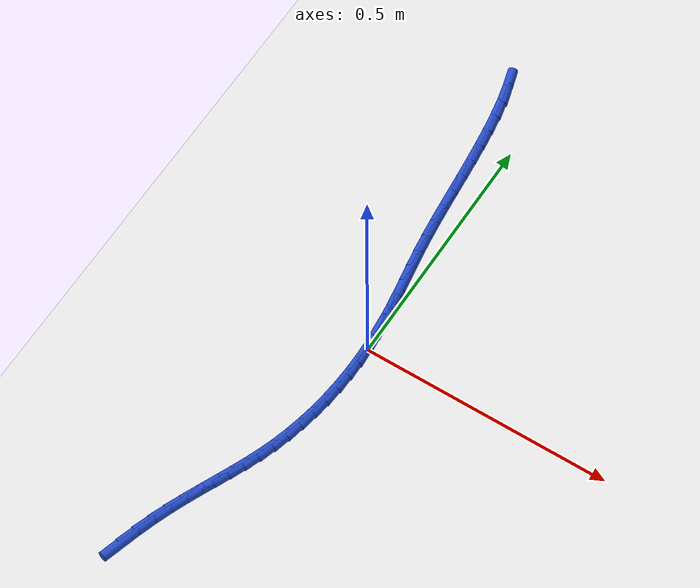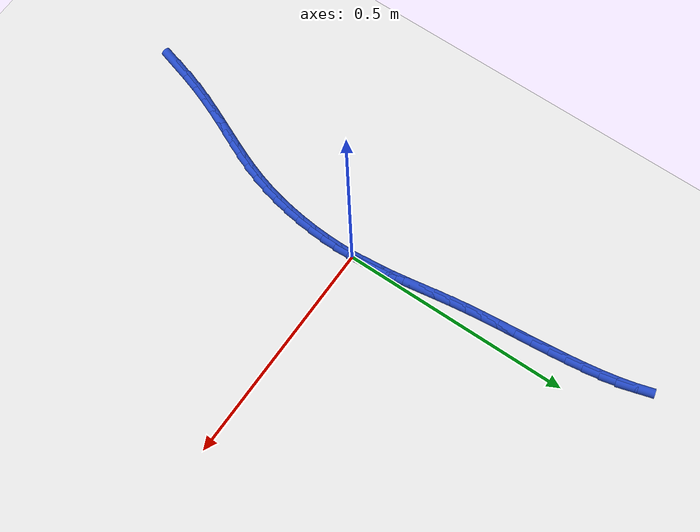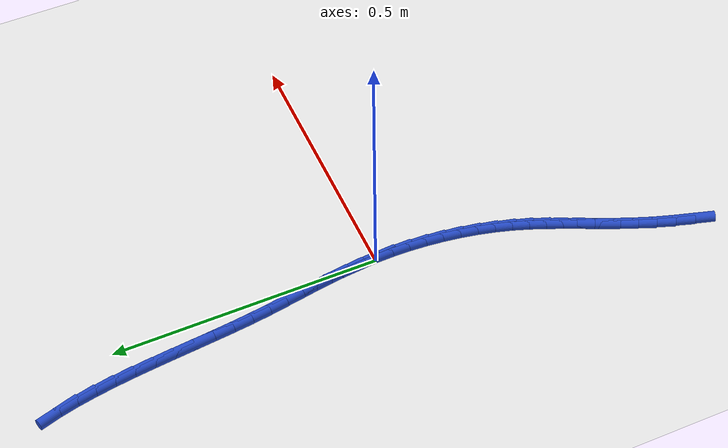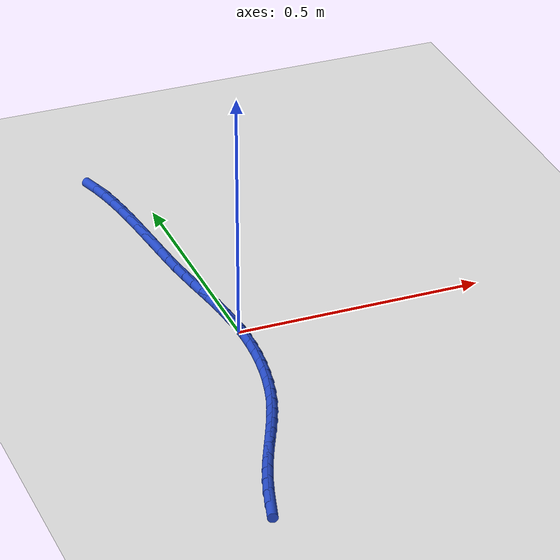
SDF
<sdf version="1.6">
 <world name="default">
  <model name="ground_plane">
   <static>1</static>
   <link name="link">
    <collision name="collision">
     <geometry><plane><normal>0 0 1</normal><size>100 100</size></plane></geometry>
     <surface><friction><ode><mu>100</mu><mu2>50</mu2></ode></friction></surface>
    </collision>
    <visual name="visual">
     <cast_shadows>0</cast_shadows>
     <geometry><plane><normal>0 0 1</normal><size>100 100</size></plane></geometry>
     <material>
      <script><uri>file://media/materials/scripts/gazebo.material</uri><name>Gazebo/WhiteGlow</name></script>
     </material>
    </visual>
   </link>
  </model>
  <model name="line">
   <link name="link_0">
    <pose>5.204170427930421e-18 0.0 0.01 0 1.57 -1.5065319160042556</pose>
    <collision name="collision">
     <geometry><cylinder><radius>0.01</radius><length>0.08</length></cylinder></geometry>
    </collision>
    <visual name="visual">
     <material>
      <script><name>Gazebo/Blue</name><uri>file://media/materials/scripts/gazebo.material</uri></script>
     </material>
     <geometry><cylinder><radius>0.01</radius><length>0.08</length></cylinder></geometry>
    </visual>
   </link>
   <link name="link_1">
    <pose>-0.00204267366617054 0.031741687880043064 0.01 0 1.57 -1.4699507299500543</pose>
    <collision name="collision">
     <geometry><cylinder><radius>0.01</radius><length>0.08</length></cylinder></geometry>
    </collision>
    <visual name="visual">
     <material>
      <script><name>Gazebo/Blue</name><uri>file://media/materials/scripts/gazebo.material</uri></script>
     </material>
     <geometry><cylinder><radius>0.01</radius><length>0.08</length></cylinder></geometry>
    </visual>
   </link>
   <link name="link_2">
    <pose>-0.005219300440539194 0.06313473800753344 0.01 0 1.57 -1.44181646894058</pose>
    <collision name="collision">
     <geometry><cylinder><radius>0.01</radius><length>0.08</length></cylinder></geometry>
    </collision>
    <visual name="visual">
     <material>
      <script><name>Gazebo/Blue</name><uri>file://media/materials/scripts/gazebo.material</uri></script>
     </material>
     <geometry><cylinder><radius>0.01</radius><length>0.08</length></cylinder></geometry>
    </visual>
   </link>
   <link name="link_3">
    <pose>-0.009276293561994 0.09441459119313915 0.01 0 1.57 -1.422733107835847</pose>
    <collision name="collision">
     <geometry><cylinder><radius>0.01</radius><length>0.08</length></cylinder></geometry>
    </collision>
    <visual name="visual">
     <material>
      <script><name>Gazebo/Blue</name><uri>file://media/materials/scripts/gazebo.material</uri></script>
     </material>
     <geometry><cylinder><radius>0.01</radius><length>0.08</length></cylinder></geometry>
    </visual>
   </link>
   <link name="link_4">
    <pose>-0.013960066269423 0.12581668824752817 0.01 0 1.57 -1.4128963723806673</pose>
    <collision name="collision">
     <geometry><cylinder><radius>0.01</radius><length>0.08</length></cylinder></geometry>
    </collision>
    <visual name="visual">
     <material>
      <script><name>Gazebo/Blue</name><uri>file://media/materials/scripts/gazebo.material</uri></script>
     </material>
     <geometry><cylinder><radius>0.01</radius><length>0.08</length></cylinder></geometry>
    </visual>
   </link>
   <link name="link_5">
    <pose>-0.01901703180171423 0.15757646998136846 0.01 0 1.57 -1.4121378567576481</pose>
    <collision name="collision">
     <geometry><cylinder><radius>0.01</radius><length>0.08</length></cylinder></geometry>
    </collision>
    <visual name="visual">
     <material>
      <script><name>Gazebo/Blue</name><uri>file://media/materials/scripts/gazebo.material</uri></script>
     </material>
     <geometry><cylinder><radius>0.01</radius><length>0.08</length></cylinder></geometry>
    </visual>
   </link>
   <link name="link_6">
    <pose>-0.024193603397755753 0.1899293772053281 0.01 0 1.57 -1.4199802181084986</pose>
    <collision name="collision">
     <geometry><cylinder><radius>0.01</radius><length>0.08</length></cylinder></geometry>
    </collision>
    <visual name="visual">
     <material>
      <script><name>Gazebo/Blue</name><uri>file://media/materials/scripts/gazebo.material</uri></script>
     </material>
     <geometry><cylinder><radius>0.01</radius><length>0.08</length></cylinder></geometry>
    </visual>
   </link>
   <link name="link_7">
    <pose>-0.029236194296435595 0.22311085073007497 0.01 0 1.57 -1.435693346711526</pose>
    <collision name="collision">
     <geometry><cylinder><radius>0.01</radius><length>0.08</length></cylinder></geometry>
    </collision>
    <visual name="visual">
     <material>
      <script><name>Gazebo/Blue</name><uri>file://media/materials/scripts/gazebo.material</uri></script>
     </material>
     <geometry><cylinder><radius>0.01</radius><length>0.08</length></cylinder></geometry>
    </visual>
   </link>
   <link name="link_8">
    <pose>-0.0338912177366418 0.2573563313662772 0.01 0 1.57 -1.4561835001598433</pose>
    <collision name="collision">
     <geometry><cylinder><radius>0.01</radius><length>0.08</length></cylinder></geometry>
    </collision>
    <visual name="visual">
     <material>
      <script><name>Gazebo/Blue</name><uri>file://media/materials/scripts/gazebo.material</uri></script>
     </material>
     <geometry><cylinder><radius>0.01</radius><length>0.08</length></cylinder></geometry>
    </visual>
   </link>
   <link name="link_9">
    <pose>-0.03797395466479403 0.292822206277312 0.01 0 1.57 -1.4714053504873996</pose>
    <collision name="collision">
     <geometry><cylinder><radius>0.01</radius><length>0.08</length></cylinder></geometry>
    </collision>
    <visual name="visual">
     <material>
      <script><name>Gazebo/Blue</name><uri>file://media/materials/scripts/gazebo.material</uri></script>
     </material>
     <geometry><cylinder><radius>0.01</radius><length>0.08</length></cylinder></geometry>
    </visual>
   </link>
   <link name="link_10">
    <pose>-0.04161212363871337 0.32930621365133556 0.01 0 1.57 -1.4793840261193771</pose>
    <collision name="collision">
     <geometry><cylinder><radius>0.01</radius><length>0.08</length></cylinder></geometry>
    </collision>
    <visual name="visual">
     <material>
      <script><name>Gazebo/Blue</name><uri>file://media/materials/scripts/gazebo.material</uri></script>
     </material>
     <geometry><cylinder><radius>0.01</radius><length>0.08</length></cylinder></geometry>
    </visual>
   </link>
   <link name="link_11">
    <pose>-0.04502200179164849 0.36650443476592304 0.01 0 1.57 -1.4806925210956428</pose>
    <collision name="collision">
     <geometry><cylinder><radius>0.01</radius><length>0.08</length></cylinder></geometry>
    </collision>
    <visual name="visual">
     <material>
      <script><name>Gazebo/Blue</name><uri>file://media/materials/scripts/gazebo.material</uri></script>
     </material>
     <geometry><cylinder><radius>0.01</radius><length>0.08</length></cylinder></geometry>
    </visual>
   </link>
   <link name="link_12">
    <pose>-0.048419872030523205 0.4041129442710151 0.01 0 1.57 -1.4755752256892347</pose>
    <collision name="collision">
     <geometry><cylinder><radius>0.01</radius><length>0.08</length></cylinder></geometry>
    </collision>
    <visual name="visual">
     <material>
      <script><name>Gazebo/Blue</name><uri>file://media/materials/scripts/gazebo.material</uri></script>
     </material>
     <geometry><cylinder><radius>0.01</radius><length>0.08</length></cylinder></geometry>
    </visual>
   </link>
   <link name="link_13">
    <pose>-0.05202201726226119 0.44182781681655114 0.01 0 1.57 -1.4639818279687642</pose>
    <collision name="collision">
     <geometry><cylinder><radius>0.01</radius><length>0.08</length></cylinder></geometry>
    </collision>
    <visual name="visual">
     <material>
      <script><name>Gazebo/Blue</name><uri>file://media/materials/scripts/gazebo.material</uri></script>
     </material>
     <geometry><cylinder><radius>0.01</radius><length>0.08</length></cylinder></geometry>
    </visual>
   </link>
   <link name="link_14">
    <pose>-0.056044720393786183 0.4793451270524713 0.01 0 1.57 -1.445575172398241</pose>
    <collision name="collision">
     <geometry><cylinder><radius>0.01</radius><length>0.08</length></cylinder></geometry>
    </collision>
    <visual name="visual">
     <material>
      <script><name>Gazebo/Blue</name><uri>file://media/materials/scripts/gazebo.material</uri></script>
     </material>
     <geometry><cylinder><radius>0.01</radius><length>0.08</length></cylinder></geometry>
    </visual>
   </link>
   <link name="link_15">
    <pose>-0.06070426433202192 0.5163609496287158 0.01 0 1.57 -1.4197165309520097</pose>
    <collision name="collision">
     <geometry><cylinder><radius>0.01</radius><length>0.08</length></cylinder></geometry>
    </collision>
    <visual name="visual">
     <material>
      <script><name>Gazebo/Blue</name><uri>file://media/materials/scripts/gazebo.material</uri></script>
     </material>
     <geometry><cylinder><radius>0.01</radius><length>0.08</length></cylinder></geometry>
    </visual>
   </link>
   <link name="link_16">
    <pose>-0.06621693198389213 0.5525713591952244 0.01 0 1.57 -1.3854312193046547</pose>
    <collision name="collision">
     <geometry><cylinder><radius>0.01</radius><length>0.08</length></cylinder></geometry>
    </collision>
    <visual name="visual">
     <material>
      <script><name>Gazebo/Blue</name><uri>file://media/materials/scripts/gazebo.material</uri></script>
     </material>
     <geometry><cylinder><radius>0.01</radius><length>0.08</length></cylinder></geometry>
    </visual>
   </link>
   <link name="link_17">
    <pose>-0.07279900625632056 0.5876724304019372 0.01 0 1.57 -1.341359589388428</pose>
    <collision name="collision">
     <geometry><cylinder><radius>0.01</radius><length>0.08</length></cylinder></geometry>
    </collision>
    <visual name="visual">
     <material>
      <script><name>Gazebo/Blue</name><uri>file://media/materials/scripts/gazebo.material</uri></script>
     </material>
     <geometry><cylinder><radius>0.01</radius><length>0.08</length></cylinder></geometry>
    </visual>
   </link>
   <link name="link_18">
    <pose>-0.08066677005623091 0.6213602378987942 0.01 0 1.57 -1.2857063093187713</pose>
    <collision name="collision">
     <geometry><cylinder><radius>0.01</radius><length>0.08</length></cylinder></geometry>
    </collision>
    <visual name="visual">
     <material>
      <script><name>Gazebo/Blue</name><uri>file://media/materials/scripts/gazebo.material</uri></script>
     </material>
     <geometry><cylinder><radius>0.01</radius><length>0.08</length></cylinder></geometry>
    </visual>
   </link>
   <link name="link_222">
    <pose>-0.15496168610159902 -0.567382848438877 0.01 0 1.57 1.282220454715896</pose>
    <collision name="collision">
     <geometry><cylinder><radius>0.01</radius><length>0.08</length></cylinder></geometry>
    </collision>
    <visual name="visual">
     <material>
      <script><name>Gazebo/Blue</name><uri>file://media/materials/scripts/gazebo.material</uri></script>
     </material>
     <geometry><cylinder><radius>0.01</radius><length>0.08</length></cylinder></geometry>
    </visual>
   </link>
   <link name="link_223">
    <pose>-0.14433186450791682 -0.5315756256320219 0.01 0 1.57 1.2522261411102003</pose>
    <collision name="collision">
     <geometry><cylinder><radius>0.01</radius><length>0.08</length></cylinder></geometry>
    </collision>
    <visual name="visual">
     <material>
      <script><name>Gazebo/Blue</name><uri>file://media/materials/scripts/gazebo.material</uri></script>
     </material>
     <geometry><cylinder><radius>0.01</radius><length>0.08</length></cylinder></geometry>
    </visual>
   </link>
   <link name="link_224">
    <pose>-0.1329889347794858 -0.49718261313736656 0.01 0 1.57 1.2126594631180672</pose>
    <collision name="collision">
     <geometry><cylinder><radius>0.01</radius><length>0.08</length></cylinder></geometry>
    </collision>
    <visual name="visual">
     <material>
      <script><name>Gazebo/Blue</name><uri>file://media/materials/scripts/gazebo.material</uri></script>
     </material>
     <geometry><cylinder><radius>0.01</radius><length>0.08</length></cylinder></geometry>
    </visual>
   </link>
   <link name="link_225">
    <pose>-0.12076933591308474 -0.4645340903588353 0.01 0 1.57 1.1789596940832896</pose>
    <collision name="collision">
     <geometry><cylinder><radius>0.01</radius><length>0.08</length></cylinder></geometry>
    </collision>
    <visual name="visual">
     <material>
      <script><name>Gazebo/Blue</name><uri>file://media/materials/scripts/gazebo.material</uri></script>
     </material>
     <geometry><cylinder><radius>0.01</radius><length>0.08</length></cylinder></geometry>
    </visual>
   </link>
   <link name="link_226">
    <pose>-0.10789647403721063 -0.43338028396289413 0.01 0 1.57 1.1557841663061856</pose>
    <collision name="collision">
     <geometry><cylinder><radius>0.01</radius><length>0.08</length></cylinder></geometry>
    </collision>
    <visual name="visual">
     <material>
      <script><name>Gazebo/Blue</name><uri>file://media/materials/scripts/gazebo.material</uri></script>
     </material>
     <geometry><cylinder><radius>0.01</radius><length>0.08</length></cylinder></geometry>
    </visual>
   </link>
   <link name="link_227">
    <pose>-0.09466890143229319 -0.4033587786690187 0.01 0 1.57 1.14452190050037</pose>
    <collision name="collision">
     <geometry><cylinder><radius>0.01</radius><length>0.08</length></cylinder></geometry>
    </collision>
    <visual name="visual">
     <material>
      <script><name>Gazebo/Blue</name><uri>file://media/materials/scripts/gazebo.material</uri></script>
     </material>
     <geometry><cylinder><radius>0.01</radius><length>0.08</length></cylinder></geometry>
    </visual>
   </link>
   <link name="link_228">
    <pose>-0.08138517037876221 -0.3741071591966847 0.01 0 1.57 1.1461715776311387</pose>
    <collision name="collision">
     <geometry><cylinder><radius>0.01</radius><length>0.08</length></cylinder></geometry>
    </collision>
    <visual name="visual">
     <material>
      <script><name>Gazebo/Blue</name><uri>file://media/materials/scripts/gazebo.material</uri></script>
     </material>
     <geometry><cylinder><radius>0.01</radius><length>0.08</length></cylinder></geometry>
    </visual>
   </link>
   <link name="link_229">
    <pose>-0.06834383315704745 -0.34526301026536776 0.01 0 1.57 1.1612810658768797</pose>
    <collision name="collision">
     <geometry><cylinder><radius>0.01</radius><length>0.08</length></cylinder></geometry>
    </collision>
    <visual name="visual">
     <material>
      <script><name>Gazebo/Blue</name><uri>file://media/materials/scripts/gazebo.material</uri></script>
     </material>
     <geometry><cylinder><radius>0.01</radius><length>0.08</length></cylinder></geometry>
    </visual>
   </link>
   <link name="link_230">
    <pose>-0.05584344204757837 -0.3164639165945428 0.01 0 1.57 1.1898662997089198</pose>
    <collision name="collision">
     <geometry><cylinder><radius>0.01</radius><length>0.08</length></cylinder></geometry>
    </collision>
    <visual name="visual">
     <material>
      <script><name>Gazebo/Blue</name><uri>file://media/materials/scripts/gazebo.material</uri></script>
     </material>
     <geometry><cylinder><radius>0.01</radius><length>0.08</length></cylinder></geometry>
    </visual>
   </link>
   <link name="link_231">
    <pose>-0.04418254933078537 -0.28734746290368707 0.01 0 1.57 1.231308783624591</pose>
    <collision name="collision">
     <geometry><cylinder><radius>0.01</radius><length>0.08</length></cylinder></geometry>
    </collision>
    <visual name="visual">
     <material>
      <script><name>Gazebo/Blue</name><uri>file://media/materials/scripts/gazebo.material</uri></script>
     </material>
     <geometry><cylinder><radius>0.01</radius><length>0.08</length></cylinder></geometry>
    </visual>
   </link>
   <link name="link_232">
    <pose>-0.033659703562702016 -0.25755124082723885 0.01 0 1.57 1.2816195384716842</pose>
    <collision name="collision">
     <geometry><cylinder><radius>0.01</radius><length>0.08</length></cylinder></geometry>
    </collision>
    <visual name="visual">
     <material>
      <script><name>Gazebo/Blue</name><uri>file://media/materials/scripts/gazebo.material</uri></script>
     </material>
     <geometry><cylinder><radius>0.01</radius><length>0.08</length></cylinder></geometry>
    </visual>
   </link>
   <link name="link_233">
    <pose>-0.024516327257922424 -0.22681890604134444 0.01 0 1.57 1.3307045378944407</pose>
    <collision name="collision">
     <geometry><cylinder><radius>0.01</radius><length>0.08</length></cylinder></geometry>
    </collision>
    <visual name="visual">
     <material>
      <script><name>Gazebo/Blue</name><uri>file://media/materials/scripts/gazebo.material</uri></script>
     </material>
     <geometry><cylinder><radius>0.01</radius><length>0.08</length></cylinder></geometry>
    </visual>
   </link>
   <link name="link_234">
    <pose>-0.01679230034919554 -0.19526831170315762 0.01 0 1.57 1.3771243778476072</pose>
    <collision name="collision">
     <geometry><cylinder><radius>0.01</radius><length>0.08</length></cylinder></geometry>
    </collision>
    <visual name="visual">
     <material>
      <script><name>Gazebo/Blue</name><uri>file://media/materials/scripts/gazebo.material</uri></script>
     </material>
     <geometry><cylinder><radius>0.01</radius><length>0.08</length></cylinder></geometry>
    </visual>
   </link>
   <link name="link_235">
    <pose>-0.010483078618415282 -0.16309979182918033 0.01 0 1.57 1.4215749342620247</pose>
    <collision name="collision">
     <geometry><cylinder><radius>0.01</radius><length>0.08</length></cylinder></geometry>
    </collision>
    <visual name="visual">
     <material>
      <script><name>Gazebo/Blue</name><uri>file://media/materials/scripts/gazebo.material</uri></script>
     </material>
     <geometry><cylinder><radius>0.01</radius><length>0.08</length></cylinder></geometry>
    </visual>
   </link>
   <link name="link_236">
    <pose>-0.005584117847475543 -0.13051368043591433 0.01 0 1.57 1.4647057462019617</pose>
    <collision name="collision">
     <geometry><cylinder><radius>0.01</radius><length>0.08</length></cylinder></geometry>
    </collision>
    <visual name="visual">
     <material>
      <script><name>Gazebo/Blue</name><uri>file://media/materials/scripts/gazebo.material</uri></script>
     </material>
     <geometry><cylinder><radius>0.01</radius><length>0.08</length></cylinder></geometry>
    </visual>
   </link>
   <link name="link_237">
    <pose>-0.0020908738182702376 -0.09771031153986148 0.01 0 1.57 1.5071392189382016</pose>
    <collision name="collision">
     <geometry><cylinder><radius>0.01</radius><length>0.08</length></cylinder></geometry>
    </collision>
    <visual name="visual">
     <material>
      <script><name>Gazebo/Blue</name><uri>file://media/materials/scripts/gazebo.material</uri></script>
     </material>
     <geometry><cylinder><radius>0.01</radius><length>0.08</length></cylinder></geometry>
    </visual>
   </link>
   <link name="link_238">
    <pose>1.197687306771049e-06 -0.06489001915752289 0.01 0 1.57 1.5494910447530137</pose>
    <collision name="collision">
     <geometry><cylinder><radius>0.01</radius><length>0.08</length></cylinder></geometry>
    </collision>
    <visual name="visual">
     <material>
      <script><name>Gazebo/Blue</name><uri>file://media/materials/scripts/gazebo.material</uri></script>
     </material>
     <geometry><cylinder><radius>0.01</radius><length>0.08</length></cylinder></geometry>
    </visual>
   </link>
   <link name="link_239">
    <pose>0.0006966408873614596 -0.03225313730540211 0.01 0 1.57 -1.5492005180570065</pose>
    <collision name="collision">
     <geometry><cylinder><radius>0.01</radius><length>0.08</length></cylinder></geometry>
    </collision>
    <visual name="visual">
     <material>
      <script><name>Gazebo/Blue</name><uri>file://media/materials/scripts/gazebo.material</uri></script>
     </material>
     <geometry><cylinder><radius>0.01</radius><length>0.08</length></cylinder></geometry>
    </visual>
   </link>
   <link name="link_240">
    <pose>5.204170427930421e-18 -1.3183898417423734e-16 0.01 0 1.57 -1.5050798297719932</pose>
    <collision name="collision">
     <geometry><cylinder><radius>0.01</radius><length>0.08</length></cylinder></geometry>
    </collision>
    <visual name="visual">
     <material>
      <script><name>Gazebo/Blue</name><uri>file://media/materials/scripts/gazebo.material</uri></script>
     </material>
     <geometry><cylinder><radius>0.01</radius><length>0.08</length></cylinder></geometry>
    </visual>
   </link>
   <link name="link_241">
    <pose>-0.002084180756671503 0.03166905874218118 0.01 0 1.57 -1.4590022598096943</pose>
    <collision name="collision">
     <geometry><cylinder><radius>0.01</radius><length>0.08</length></cylinder></geometry>
    </collision>
    <visual name="visual">
     <material>
      <script><name>Gazebo/Blue</name><uri>file://media/materials/scripts/gazebo.material</uri></script>
     </material>
     <geometry><cylinder><radius>0.01</radius><length>0.08</length></cylinder></geometry>
    </visual>
   </link>
   <link name="link_242">
    <pose>-0.005551357164546971 0.06255370490463993 0.01 0 1.57 -1.4822827536438148</pose>
    <collision name="collision">
     <geometry><cylinder><radius>0.01</radius><length>0.08</length></cylinder></geometry>
    </collision>
    <visual name="visual">
     <material>
      <script><name>Gazebo/Blue</name><uri>file://media/materials/scripts/gazebo.material</uri></script>
     </material>
     <geometry><cylinder><radius>0.01</radius><length>0.08</length></cylinder></geometry>
    </visual>
   </link>
  </model>
 </world>
</sdf>
